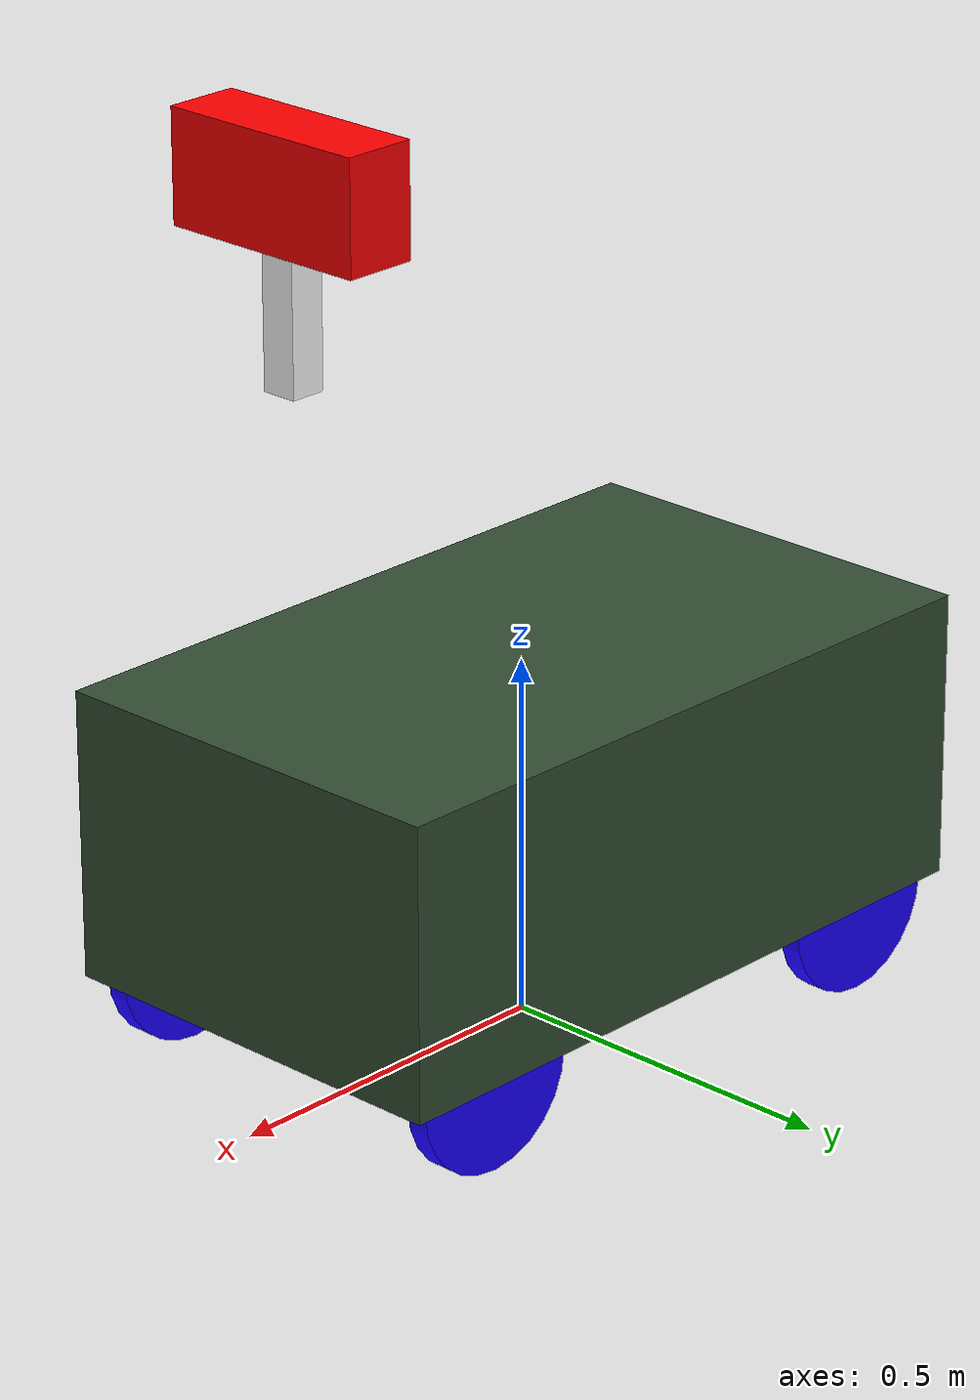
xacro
<?xml version="1.0"?>
<robot xmlns:xacro="http://ros.org/wiki/xacro" name="simple_box_bot">

  <!-- All include file used -->

  <xacro:include filename="lidar.xacro" />

  <!-- Structure of the Main body -->

  <link name="base_link">
    <visual>
      <geometry>
        <box size="${body_x} ${body_y} ${body_z}" />
      </geometry>
      <material name="almost_green" />
      <origin xyz="0 0 ${body_z / 2 + wheel_radius }" rpy="0 0 0" />
    </visual>

    <collision>
      <geometry>
        <box size="${body_x} ${body_y} ${body_z}" />
      </geometry>
      <origin xyz="0 0 ${body_z / 2 + wheel_radius }" rpy="0 0 0" />
    </collision>

    <inertial>
      <origin rpy="0 0 0" xyz="0 0 0"/>
      <mass value="${body_mass}"/>
      <inertia
        ixx="${(1/12)*body_mass*(body_y*body_y + body_z*body_z)}"
        ixy="0"
        ixz="0"
        iyy="${(1/12)*body_mass*(body_x*body_x+body_z*body_z)}"
        iyz="0"
        izz="${(1/12)*body_mass*(body_y*body_y+body_x*body_x)}"
      />
    </inertial>

  </link>

  <!-- Right Front wheel Structure and joint -->

  <link name="rf_wheel">
    <visual>
      <geometry>
        <cylinder length="${wheel_len}" radius="${wheel_radius}" />
      </geometry>
      <material name="almost_blue" />
      <origin xyz="0 0 0" rpy="${pi/2} 0 0" />
    </visual>

    <collision>
      <geometry>
        <cylinder length="${wheel_len}" radius="${wheel_radius}" />
      </geometry>
      <origin xyz="0 0 0" rpy="${pi/2} 0 0" />
    </collision>

    <xacro:inertia_wheel />

  </link>

  <joint name="body_to_rf_wheel" type="continuous">
    <parent link="base_link" />
    <child link="rf_wheel" />
    <origin xyz="${body_x/2 - 1.2*wheel_radius} ${-body_y/2 + wheel_len} ${wheel_z}" rpy="0 0 0" />
    <axis xyz="0 1 0" />
  </joint>

  <!-- Right Back Wheel Structure and Joint -->

  <link name="rb_wheel">
    <visual>
      <geometry>
        <cylinder length="${wheel_len}" radius="${wheel_radius}" />
      </geometry>
      <material name="almost_blue" />
      <origin xyz="0 0 0" rpy="${pi/2} 0 0" />
    </visual>

    <collision>
      <geometry>
        <cylinder length="${wheel_len}" radius="${wheel_radius}" />
      </geometry>
      <origin xyz="0 0 0" rpy="${pi/2} 0 0" />
    </collision>

    <xacro:inertia_wheel />

  </link>

  <joint name="body_to_rb_wheel" type="continuous">
    <parent link="base_link" />
    <child link="rb_wheel" />
    <origin xyz="${-body_x/2 + 1.2*wheel_radius} ${-body_y/2 + wheel_len} ${wheel_z}" rpy="0 0 0" />
    <axis xyz="0 1 0" />
  </joint>

  <!-- Left Front Wheel Structure and Joint -->

  <link name="lf_wheel">
    <visual>
      <geometry>
        <cylinder length="${wheel_len}" radius="${wheel_radius}" />
      </geometry>
      <material name="almost_blue" />
      <origin xyz="0 0 0" rpy="${pi/2} 0 0" />
    </visual>

    <collision>
      <geometry>
        <cylinder length="${wheel_len}" radius="${wheel_radius}" />
      </geometry>
      <origin xyz="0 0 0" rpy="${pi/2} 0 0" />
    </collision>

    <xacro:inertia_wheel />

  </link>

  <joint name="body_to_lf_wheel" type="continuous">
    <parent link="base_link" />
    <child link="lf_wheel" />
    <origin xyz="${body_x/2 - 1.2*wheel_radius} ${body_y/2 - wheel_len} ${wheel_z}" rpy="0 0 0" />
    <axis xyz="0 1 0" />
  </joint>

  <!-- Left Back Structure and Joint -->

  <link name="lb_wheel">
    <visual>
      <geometry>
        <cylinder length="${wheel_len}" radius="${wheel_radius}" />
      </geometry>
      <material name="almost_blue" />
      <origin xyz="0 0 0" rpy="${pi/2} 0 0" />
    </visual>

    <collision>
      <geometry>
        <cylinder length="${wheel_len}" radius="${wheel_radius}" />
      </geometry>
      <origin xyz="0 0 0" rpy="${pi/2} 0 0" />
    </collision>

    <xacro:inertia_wheel />

  </link>

  <joint name="body_to_lb_wheel" type="continuous">
    <parent link="base_link" />
    <child link="lb_wheel" />
    <origin xyz="${-body_x/2 + 1.2*wheel_radius} ${body_y/2 - wheel_len} ${wheel_z}" rpy="0 0 0" />
    <axis xyz="0 1 0" />
  </joint>

</robot>

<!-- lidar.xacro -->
<robot xmlns:xacro="http://ros.org/wiki/xacro" name="simple_box_robo" >

  <!-- All file included -->

  <xacro:include filename="properties.urdf.xacro" />

  <!-- Standing pole Structrue and Joint -->

  <link name="rod">
    <visual>
      <geometry>
        <box size="${rod_x} ${rod_y} ${rod_z}" />
      </geometry>
      <material name="white" />
    </visual>

    <collision>
      <geometry>
        <box size="${rod_x} ${rod_y} ${rod_z}" />
      </geometry>
    </collision>

    <inertial>
      <origin xyz="0 0 0" rpy="0 0 0" />
      <mass value="${rod_mass}" />
      <inertia
        ixx="${(1/12.0) * rod_mass * (rod_y*rod_y + rod_z*rod_z)}"
        ixy="0.0"
        ixz="0.0"
        iyy="${(1/12.0) * rod_mass * (rod_x*rod_x + rod_z*rod_z)}"
        iyz="0.0"
        izz="${(1/12.0) * rod_mass * (rod_x*rod_x + rod_y*rod_y)}"
      />
    </inertial>

  </link>

  <joint name="body_to_rod" type="prismatic">
    <parent link="base_link" />
    <child link="rod" />
    <origin xyz="${body_x/2 - lidar_x} 0 ${body_z + wheel_radius}" rpy="0 0 0" />
    <axis xyz="0 0 1" />
    <limit lower="${body_z + wheel_radius}" upper="${body_z + wheel_radius + rod_z/2}" effort="10.0" velocity="1.0" />
  </joint>

  <!-- Lidar Main Body -->

  <link name="lidar_body">
    <visual>
      <geometry>
        <box size="${lidar_x} ${lidar_y} ${lidar_z}" />
      </geometry>
      <material name="red" />
    </visual>

    <collision>
      <geometry>
        <box size="${lidar_x} ${lidar_y} ${lidar_z}" />
      </geometry>
    </collision>

    <inertial>
      <origin rpy="0 0 0" xyz="0 0 0"/>
      <mass value="${sensor_mass}"/>
      <inertia
        ixx="${(1/12)*sensor_mass*(lidar_y*lidar_y + lidar_z*lidar_z)}"
        ixy="0"
        ixz="0"
        iyy="${(1/12)*sensor_mass*(lidar_x*lidar_x + lidar_z*lidar_z)}"
        iyz="0"
        izz="${(1/12)*sensor_mass*(lidar_x*lidar_x + lidar_y*lidar_y)}"
      />
    </inertial>

  </link>

  <joint name="rod_to_lidar" type="revolute">
    <parent link="rod" />
    <child link="lidar_body" />
    <origin xyz="0 0 ${rod_z/2 - lidar_z/4}" rpy="0 0 0" />
    <axis xyz="0 0 1" />
    <limit lower="${-3*PI/4}" upper="${3*PI/4}" effort="10.0" velocity="1.0" />
  </joint>

</robot>

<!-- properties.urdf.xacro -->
<robot xmlns:xacro="http://ros.org/wiki/xacro" name="simple_box_robo" >

    <!-- Dimension of the body -->

  <xacro:property name="body_x" value="1" />
  <xacro:property name="body_y" value="0.6" />
  <xacro:property name="body_z" value="0.4" />

  <!-- Dimension of the Wheel -->

  <xacro:property name="wheel_len" value="0.03" />
  <xacro:property name="wheel_radius" value="0.125" />
  <xacro:property name="wheel_z" value="${wheel_radius}" />

  <!-- Dimension of the Standing Rod -->

  <xacro:property name="rod_x" value="0.05" />
  <xacro:property name="rod_y" value="0.05" />
  <xacro:property name="rod_z" value="0.3" />

  <!-- Dimension of the Lidar Body -->

  <xacro:property name="lidar_x" value="0.1" />
  <xacro:property name="lidar_y" value="0.3" />
  <xacro:property name="lidar_z" value="0.15" />

  <!-- PI constant -->

  <xacro:property name="PI" value="3.141592" />

  <!-- Material Color -->

  <material name="red">
    <color rgba="1 0 0 1" />
  </material>

  <material name="black">
    <color rgba="0 0 0 1" />
  </material>

  <material name="white">
    <color rgba="1 1 1 1" />
  </material>

  <material name="almost_blue">
    <color rgba="0.1 0 1 1" />
  </material>

  <material name="almost_green">
    <color rgba="0.2 0.3 0.2 1" />
  </material>

  <!-- Material Density of the parts -->

  <xacro:property name="body_density" value="2710.0" />
  <xacro:property name="wheel_density" value="2710.0" />
  <xacro:property name="sensor_density" value="2710" />
  <xacro:property name="rod_density" value="2710.0" />

  <!-- Material mass of the parts -->

  <xacro:property name="body_mass" value="${body_density*body_x*body_y*body_z}" />
  <xacro:property name="wheel_mass" value="${wheel_density*(PI*wheel_radius*wheel_radius*wheel_len)}" />
  <xacro:property name="sensor_mass" value="${sensor_density*lidar_x*lidar_y*lidar_z}" />
  <xacro:property name="rod_mass" value="${rod_density * rod_x * rod_y * rod_z}" />

  <!-- Moment of inertia of the wheels -->

  <xacro:property name="Iz_wheel" value="${0.5*wheel_mass*wheel_radius*wheel_radius}" />
  <xacro:property name="I_wheel" value="${(1.0/12.0)*wheel_mass*(3*wheel_radius*wheel_radius+wheel_len*wheel_len)}" />

  <xacro:macro name="inertia_wheel">
    <inertial>
      <origin rpy="0 0 0" xyz="0 0 0"/>
      <mass value="${wheel_mass}"/>
      <inertia ixx="${I_wheel}" ixy="0.0" ixz="0.0" iyy="${I_wheel}" iyz="0" izz="${Iz_wheel}"/>

    </inertial>
  </xacro:macro>

  <!-- Defining DUMMY joint and link -->

  <link name="dummy">
  </link>
  <joint name="dummy_joint" type="fixed">
    <parent link="dummy"/>
    <child link="base_link"/>
  </joint>

</robot>
